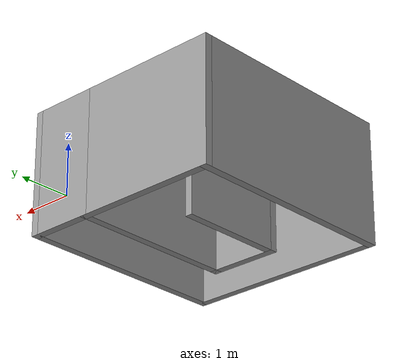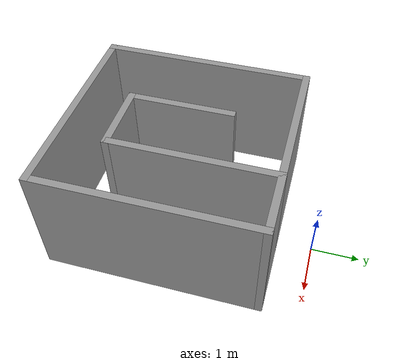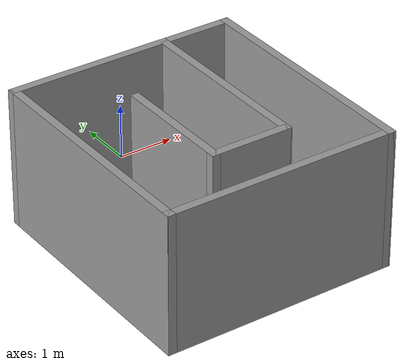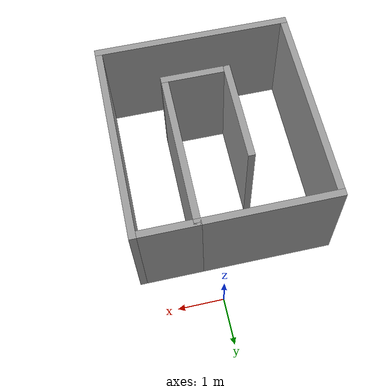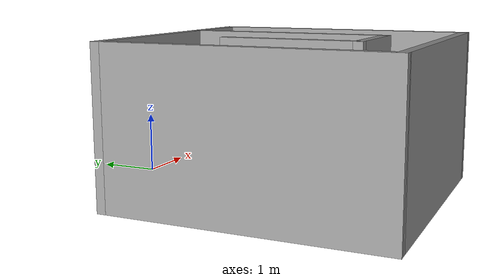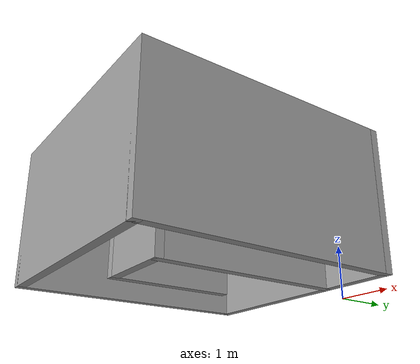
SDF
<?xml version='1.0'?>
<sdf version='1.7'>
  <model name='test'>
    <pose>-0.44 -2.6075 0 0 -0 0</pose>
    <link name='Wall_10'>
      <collision name='Wall_10_Collision'>
        <geometry>
          <box>
            <size>3.5 0.15 2.5</size>
          </box>
        </geometry>
        <pose>0 0 1.25 0 -0 0</pose>
      </collision>
      <visual name='Wall_10_Visual'>
        <pose>0 0 1.25 0 -0 0</pose>
        <geometry>
          <box>
            <size>3.5 0.15 2.5</size>
          </box>
        </geometry>
        <material>
          <script>
            <uri>file://media/materials/scripts/gazebo.material</uri>
            <name>Gazebo/Grey</name>
          </script>
          <ambient>1 1 1 1</ambient>
        </material>
        <meta>
          <layer>0</layer>
        </meta>
      </visual>
      <pose>0.8 0.1425 0 0 -0 -1.5708</pose>
    </link>
    <link name='Wall_11'>
      <collision name='Wall_11_Collision'>
        <geometry>
          <box>
            <size>1.5 0.15 2.5</size>
          </box>
        </geometry>
        <pose>0 0 1.25 0 -0 0</pose>
      </collision>
      <visual name='Wall_11_Visual'>
        <pose>0 0 1.25 0 -0 0</pose>
        <geometry>
          <box>
            <size>1.5 0.15 2.5</size>
          </box>
        </geometry>
        <material>
          <script>
            <uri>file://media/materials/scripts/gazebo.material</uri>
            <name>Gazebo/Grey</name>
          </script>
          <ambient>1 1 1 1</ambient>
        </material>
        <meta>
          <layer>0</layer>
        </meta>
      </visual>
      <pose>0.125 -1.5325 0 0 -0 3.14159</pose>
    </link>
    <link name='Wall_12'>
      <collision name='Wall_12_Collision'>
        <geometry>
          <box>
            <size>2.25 0.15 2.5</size>
          </box>
        </geometry>
        <pose>0 0 1.25 0 -0 0</pose>
      </collision>
      <visual name='Wall_12_Visual'>
        <pose>0 0 1.25 0 -0 0</pose>
        <geometry>
          <box>
            <size>2.25 0.15 2.5</size>
          </box>
        </geometry>
        <material>
          <script>
            <uri>file://media/materials/scripts/gazebo.material</uri>
            <name>Gazebo/Grey</name>
          </script>
          <ambient>1 1 1 1</ambient>
        </material>
        <meta>
          <layer>0</layer>
        </meta>
      </visual>
      <pose>-0.55 -0.4825 0 0 -0 1.5708</pose>
    </link>
    <link name='Wall_5'>
      <collision name='Wall_5_Collision'>
        <geometry>
          <box>
            <size>3 0.15 2.5</size>
          </box>
        </geometry>
        <pose>0 0 1.25 0 -0 0</pose>
      </collision>
      <visual name='Wall_5_Visual'>
        <pose>0 0 1.25 0 -0 0</pose>
        <geometry>
          <box>
            <size>3 0.15 2.5</size>
          </box>
        </geometry>
        <material>
          <script>
            <uri>file://media/materials/scripts/gazebo.material</uri>
            <name>Gazebo/Grey</name>
          </script>
          <ambient>1 1 1 1</ambient>
        </material>
        <meta>
          <layer>0</layer>
        </meta>
      </visual>
      <pose>-0.625 1.8175 0 0 -0 3.14159</pose>
    </link>
    <link name='Wall_6'>
      <collision name='Wall_6_Collision'>
        <geometry>
          <box>
            <size>4.5 0.15 2.5</size>
          </box>
        </geometry>
        <pose>0 0 1.25 0 -0 0</pose>
      </collision>
      <visual name='Wall_6_Visual'>
        <pose>0 0 1.25 0 -0 0</pose>
        <geometry>
          <box>
            <size>4.5 0.15 2.5</size>
          </box>
        </geometry>
        <material>
          <script>
            <uri>file://media/materials/scripts/gazebo.material</uri>
            <name>Gazebo/Grey</name>
          </script>
          <ambient>1 1 1 1</ambient>
        </material>
        <meta>
          <layer>0</layer>
        </meta>
      </visual>
      <pose>-2.05 -0.3575 0 0 -0 -1.5708</pose>
    </link>
    <link name='Wall_7'>
      <collision name='Wall_7_Collision'>
        <geometry>
          <box>
            <size>4.25 0.15 2.5</size>
          </box>
        </geometry>
        <pose>0 0 1.25 0 -0 0</pose>
      </collision>
      <visual name='Wall_7_Visual'>
        <pose>0 0 1.25 0 -0 0</pose>
        <geometry>
          <box>
            <size>4.25 0.15 2.5</size>
          </box>
        </geometry>
        <material>
          <script>
            <uri>file://media/materials/scripts/gazebo.material</uri>
            <name>Gazebo/Grey</name>
          </script>
          <ambient>1 1 1 1</ambient>
        </material>
        <meta>
          <layer>0</layer>
        </meta>
      </visual>
      <pose>0 -2.5325 0 0 -0 0</pose>
    </link>
    <link name='Wall_8'>
      <collision name='Wall_8_Collision'>
        <geometry>
          <box>
            <size>4.5 0.15 2.5</size>
          </box>
        </geometry>
        <pose>0 0 1.25 0 -0 0</pose>
      </collision>
      <visual name='Wall_8_Visual'>
        <pose>0 0 1.25 0 -0 0</pose>
        <geometry>
          <box>
            <size>4.5 0.15 2.5</size>
          </box>
        </geometry>
        <material>
          <script>
            <uri>file://media/materials/scripts/gazebo.material</uri>
            <name>Gazebo/Grey</name>
          </script>
          <ambient>1 1 1 1</ambient>
        </material>
        <meta>
          <layer>0</layer>
        </meta>
      </visual>
      <pose>2.05 -0.3575 0 0 -0 1.5708</pose>
    </link>
    <link name='Wall_9'>
      <collision name='Wall_9_Collision'>
        <geometry>
          <box>
            <size>1.4 0.15 2.5</size>
          </box>
        </geometry>
        <pose>0 0 1.25 0 -0 0</pose>
      </collision>
      <visual name='Wall_9_Visual'>
        <pose>0 0 1.25 0 -0 0</pose>
        <geometry>
          <box>
            <size>1.4 0.15 2.5</size>
          </box>
        </geometry>
        <material>
          <script>
            <uri>file://media/materials/scripts/gazebo.material</uri>
            <name>Gazebo/Grey</name>
          </script>
          <ambient>1 1 1 1</ambient>
        </material>
        <meta>
          <layer>0</layer>
        </meta>
      </visual>
      <pose>1.425 1.8175 0 0 -0 3.14159</pose>
    </link>
    <static>1</static>
  </model>
</sdf>
